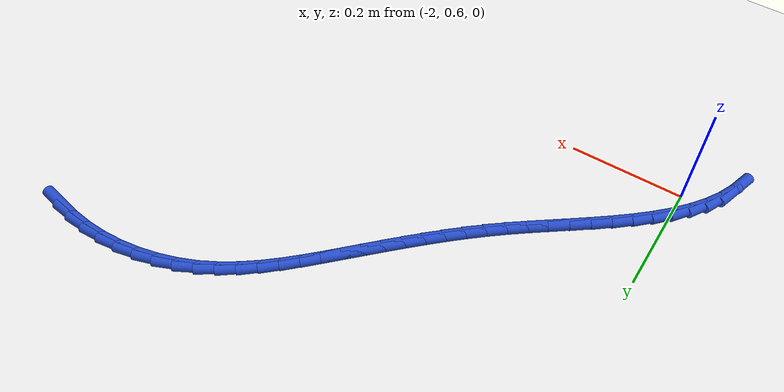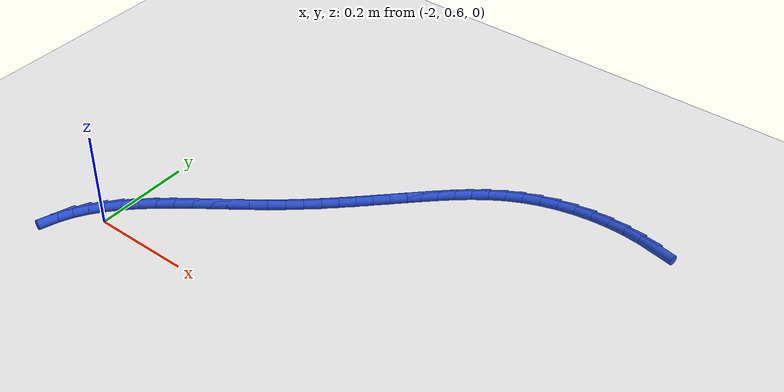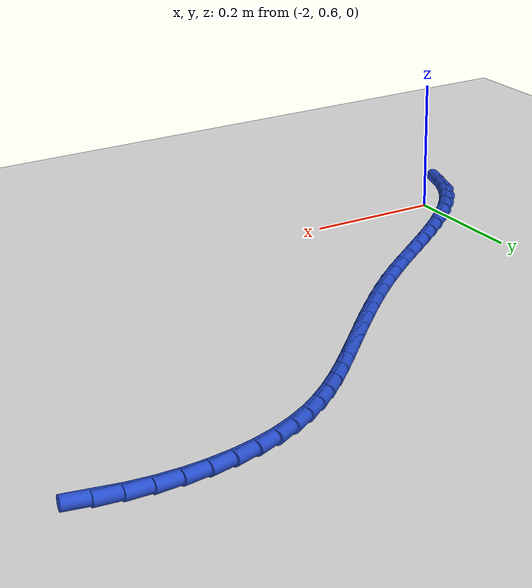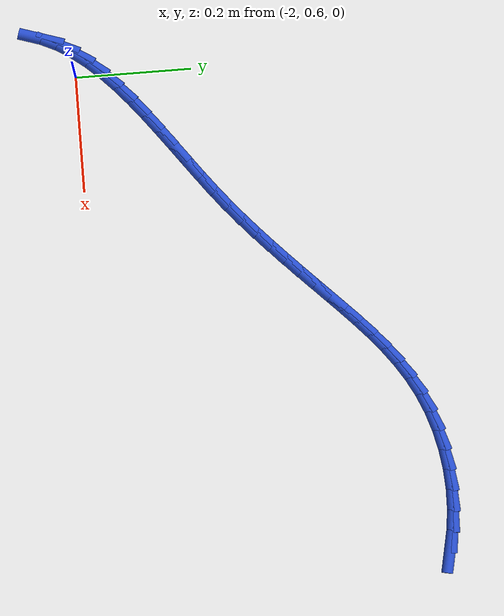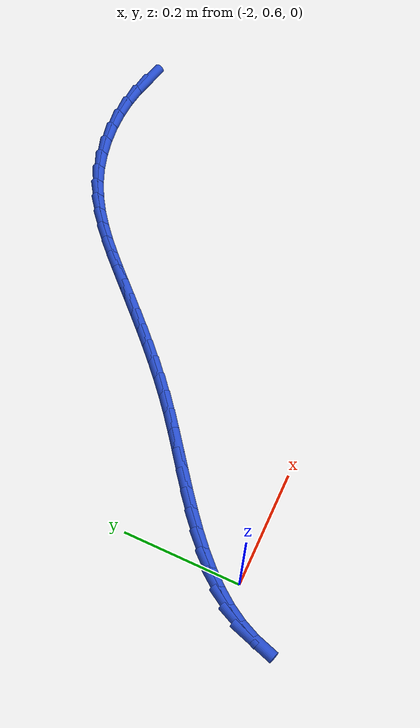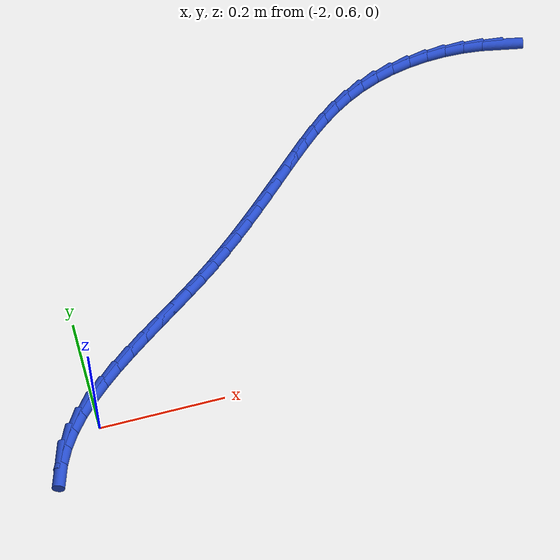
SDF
<sdf version="1.6">
 <world name="default">
  <model name="ground_plane">
   <static>1</static>
   <link name="link">
    <collision name="collision">
     <geometry><plane><normal>0 0 1</normal><size>100 100</size></plane></geometry>
     <surface><friction><ode><mu>100</mu><mu2>50</mu2></ode></friction></surface>
    </collision>
    <visual name="visual">
     <cast_shadows>0</cast_shadows>
     <geometry><plane><normal>0 0 1</normal><size>100 100</size></plane></geometry>
     <material>
      <script><uri>file://media/materials/scripts/gazebo.material</uri><name>Gazebo/WhiteGlow</name></script>
     </material>
    </visual>
   </link>
  </model>
  <model name="line">
   <link name="link_54">
    <pose>-1.13627609460566 1.1795199551467386 0.01 0 1.57 -0.19990667457121697</pose>
    <collision name="collision">
     <geometry><cylinder><radius>0.01</radius><length>0.08</length></cylinder></geometry>
    </collision>
    <visual name="visual">
     <material>
      <script><name>Gazebo/Blue</name><uri>file://media/materials/scripts/gazebo.material</uri></script>
     </material>
     <geometry><cylinder><radius>0.01</radius><length>0.08</length></cylinder></geometry>
    </visual>
   </link>
   <link name="link_55">
    <pose>-1.1702574868179003 1.186405022788991 0.01 0 1.57 -0.10813474050414479</pose>
    <collision name="collision">
     <geometry><cylinder><radius>0.01</radius><length>0.08</length></cylinder></geometry>
    </collision>
    <visual name="visual">
     <material>
      <script><name>Gazebo/Blue</name><uri>file://media/materials/scripts/gazebo.material</uri></script>
     </material>
     <geometry><cylinder><radius>0.01</radius><length>0.08</length></cylinder></geometry>
    </visual>
   </link>
   <link name="link_56">
    <pose>-1.2050116010604341 1.190177866832368 0.01 0 1.57 -0.02062837492942689</pose>
    <collision name="collision">
     <geometry><cylinder><radius>0.01</radius><length>0.08</length></cylinder></geometry>
    </collision>
    <visual name="visual">
     <material>
      <script><name>Gazebo/Blue</name><uri>file://media/materials/scripts/gazebo.material</uri></script>
     </material>
     <geometry><cylinder><radius>0.01</radius><length>0.08</length></cylinder></geometry>
    </visual>
   </link>
   <link name="link_57">
    <pose>-1.2401626916109363 1.1909030795768976 0.01 0 1.57 0.06410531051194077</pose>
    <collision name="collision">
     <geometry><cylinder><radius>0.01</radius><length>0.08</length></cylinder></geometry>
    </collision>
    <visual name="visual">
     <material>
      <script><name>Gazebo/Blue</name><uri>file://media/materials/scripts/gazebo.material</uri></script>
     </material>
     <geometry><cylinder><radius>0.01</radius><length>0.08</length></cylinder></geometry>
    </visual>
   </link>
   <link name="link_58">
    <pose>-1.275335012747081 1.1886452533226077 0.01 0 1.57 0.14758642458134646</pose>
    <collision name="collision">
     <geometry><cylinder><radius>0.01</radius><length>0.08</length></cylinder></geometry>
    </collision>
    <visual name="visual">
     <material>
      <script><name>Gazebo/Blue</name><uri>file://media/materials/scripts/gazebo.material</uri></script>
     </material>
     <geometry><cylinder><radius>0.01</radius><length>0.08</length></cylinder></geometry>
    </visual>
   </link>
   <link name="link_59">
    <pose>-1.310152818746542 1.183468980369527 0.01 0 1.57 0.23135551691995282</pose>
    <collision name="collision">
     <geometry><cylinder><radius>0.01</radius><length>0.08</length></cylinder></geometry>
    </collision>
    <visual name="visual">
     <material>
      <script><name>Gazebo/Blue</name><uri>file://media/materials/scripts/gazebo.material</uri></script>
     </material>
     <geometry><cylinder><radius>0.01</radius><length>0.08</length></cylinder></geometry>
    </visual>
   </link>
   <link name="link_60">
    <pose>-1.3442403638869937 1.1754388530176825 0.01 0 1.57 0.3169824499481687</pose>
    <collision name="collision">
     <geometry><cylinder><radius>0.01</radius><length>0.08</length></cylinder></geometry>
    </collision>
    <visual name="visual">
     <material>
      <script><name>Gazebo/Blue</name><uri>file://media/materials/scripts/gazebo.material</uri></script>
     </material>
     <geometry><cylinder><radius>0.01</radius><length>0.08</length></cylinder></geometry>
    </visual>
   </link>
   <link name="link_61">
    <pose>-1.3772219024461108 1.1646194635671039 0.01 0 1.57 0.40607531566782945</pose>
    <collision name="collision">
     <geometry><cylinder><radius>0.01</radius><length>0.08</length></cylinder></geometry>
    </collision>
    <visual name="visual">
     <material>
      <script><name>Gazebo/Blue</name><uri>file://media/materials/scripts/gazebo.material</uri></script>
     </material>
     <geometry><cylinder><radius>0.01</radius><length>0.08</length></cylinder></geometry>
    </visual>
   </link>
   <link name="link_62">
    <pose>-1.408721688701566 1.1510754043178177 0.01 0 1.57 0.49833022943852795</pose>
    <collision name="collision">
     <geometry><cylinder><radius>0.01</radius><length>0.08</length></cylinder></geometry>
    </collision>
    <visual name="visual">
     <material>
      <script><name>Gazebo/Blue</name><uri>file://media/materials/scripts/gazebo.material</uri></script>
     </material>
     <geometry><cylinder><radius>0.01</radius><length>0.08</length></cylinder></geometry>
    </visual>
   </link>
   <link name="link_63">
    <pose>-1.438431282298904 1.134909334314007 0.01 0 1.57 0.5823239168019104</pose>
    <collision name="collision">
     <geometry><cylinder><radius>0.01</radius><length>0.08</length></cylinder></geometry>
    </collision>
    <visual name="visual">
     <material>
      <script><name>Gazebo/Blue</name><uri>file://media/materials/scripts/gazebo.material</uri></script>
     </material>
     <geometry><cylinder><radius>0.01</radius><length>0.08</length></cylinder></geometry>
    </visual>
   </link>
   <link name="link_64">
    <pose>-1.4664537716423394 1.1164566661002735 0.01 0 1.57 0.6523564934999107</pose>
    <collision name="collision">
     <geometry><cylinder><radius>0.01</radius><length>0.08</length></cylinder></geometry>
    </collision>
    <visual name="visual">
     <material>
      <script><name>Gazebo/Blue</name><uri>file://media/materials/scripts/gazebo.material</uri></script>
     </material>
     <geometry><cylinder><radius>0.01</radius><length>0.08</length></cylinder></geometry>
    </visual>
   </link>
   <link name="link_65">
    <pose>-1.4930477354789766 1.096140754851777 0.01 0 1.57 0.7077951934457127</pose>
    <collision name="collision">
     <geometry><cylinder><radius>0.01</radius><length>0.08</length></cylinder></geometry>
    </collision>
    <visual name="visual">
     <material>
      <script><name>Gazebo/Blue</name><uri>file://media/materials/scripts/gazebo.material</uri></script>
     </material>
     <geometry><cylinder><radius>0.01</radius><length>0.08</length></cylinder></geometry>
    </visual>
   </link>
   <link name="link_66">
    <pose>-1.518472041981991 1.0743851194380254 0.01 0 1.57 0.7485814889560467</pose>
    <collision name="collision">
     <geometry><cylinder><radius>0.01</radius><length>0.08</length></cylinder></geometry>
    </collision>
    <visual name="visual">
     <material>
      <script><name>Gazebo/Blue</name><uri>file://media/materials/scripts/gazebo.material</uri></script>
     </material>
     <geometry><cylinder><radius>0.01</radius><length>0.08</length></cylinder></geometry>
    </visual>
   </link>
   <link name="link_67">
    <pose>-1.5429855593245583 1.0516132787285262 0.01 0 1.57 0.7748732498835863</pose>
    <collision name="collision">
     <geometry><cylinder><radius>0.01</radius><length>0.08</length></cylinder></geometry>
    </collision>
    <visual name="visual">
     <material>
      <script><name>Gazebo/Blue</name><uri>file://media/materials/scripts/gazebo.material</uri></script>
     </material>
     <geometry><cylinder><radius>0.01</radius><length>0.08</length></cylinder></geometry>
    </visual>
   </link>
   <link name="link_68">
    <pose>-1.566847155679854 1.028248751592787 0.01 0 1.57 0.7869054991160199</pose>
    <collision name="collision">
     <geometry><cylinder><radius>0.01</radius><length>0.08</length></cylinder></geometry>
    </collision>
    <visual name="visual">
     <material>
      <script><name>Gazebo/Blue</name><uri>file://media/materials/scripts/gazebo.material</uri></script>
     </material>
     <geometry><cylinder><radius>0.01</radius><length>0.08</length></cylinder></geometry>
    </visual>
   </link>
   <link name="link_69">
    <pose>-1.5903145943456718 1.0047104594562921 0.01 0 1.57 0.7889601581840595</pose>
    <collision name="collision">
     <geometry><cylinder><radius>0.01</radius><length>0.08</length></cylinder></geometry>
    </collision>
    <visual name="visual">
     <material>
      <script><name>Gazebo/Blue</name><uri>file://media/materials/scripts/gazebo.material</uri></script>
     </material>
     <geometry><cylinder><radius>0.01</radius><length>0.08</length></cylinder></geometry>
    </visual>
   </link>
   <link name="link_70">
    <pose>-1.6136060284112455 0.9812525036032852 0.01 0 1.57 0.786383488912937</pose>
    <collision name="collision">
     <geometry><cylinder><radius>0.01</radius><length>0.08</length></cylinder></geometry>
    </collision>
    <visual name="visual">
     <material>
      <script><name>Gazebo/Blue</name><uri>file://media/materials/scripts/gazebo.material</uri></script>
     </material>
     <geometry><cylinder><radius>0.01</radius><length>0.08</length></cylinder></geometry>
    </visual>
   </link>
   <link name="link_71">
    <pose>-1.6368900098113632 0.9579225923304766 0.01 0 1.57 0.77950360853138</pose>
    <collision name="collision">
     <geometry><cylinder><radius>0.01</radius><length>0.08</length></cylinder></geometry>
    </collision>
    <visual name="visual">
     <material>
      <script><name>Gazebo/Blue</name><uri>file://media/materials/scripts/gazebo.material</uri></script>
     </material>
     <geometry><cylinder><radius>0.01</radius><length>0.08</length></cylinder></geometry>
    </visual>
   </link>
   <link name="link_72">
    <pose>-1.660331955672457 0.9347553898337037 0.01 0 1.57 0.7683784043462404</pose>
    <collision name="collision">
     <geometry><cylinder><radius>0.01</radius><length>0.08</length></cylinder></geometry>
    </collision>
    <visual name="visual">
     <material>
      <script><name>Gazebo/Blue</name><uri>file://media/materials/scripts/gazebo.material</uri></script>
     </material>
     <geometry><cylinder><radius>0.01</radius><length>0.08</length></cylinder></geometry>
    </visual>
   </link>
   <link name="link_73">
    <pose>-1.6840972831209589 0.9117855603088035 0.01 0 1.57 0.7531413860307464</pose>
    <collision name="collision">
     <geometry><cylinder><radius>0.01</radius><length>0.08</length></cylinder></geometry>
    </collision>
    <visual name="visual">
     <material>
      <script><name>Gazebo/Blue</name><uri>file://media/materials/scripts/gazebo.material</uri></script>
     </material>
     <geometry><cylinder><radius>0.01</radius><length>0.08</length></cylinder></geometry>
    </visual>
   </link>
   <link name="link_74">
    <pose>-1.7083514092833008 0.8890477679516143 0.01 0 1.57 0.7340023476778366</pose>
    <collision name="collision">
     <geometry><cylinder><radius>0.01</radius><length>0.08</length></cylinder></geometry>
    </collision>
    <visual name="visual">
     <material>
      <script><name>Gazebo/Blue</name><uri>file://media/materials/scripts/gazebo.material</uri></script>
     </material>
     <geometry><cylinder><radius>0.01</radius><length>0.08</length></cylinder></geometry>
    </visual>
   </link>
   <link name="link_75">
    <pose>-1.7332597512859147 0.8665766769579729 0.01 0 1.57 0.7112458480106252</pose>
    <collision name="collision">
     <geometry><cylinder><radius>0.01</radius><length>0.08</length></cylinder></geometry>
    </collision>
    <visual name="visual">
     <material>
      <script><name>Gazebo/Blue</name><uri>file://media/materials/scripts/gazebo.material</uri></script>
     </material>
     <geometry><cylinder><radius>0.01</radius><length>0.08</length></cylinder></geometry>
    </visual>
   </link>
   <link name="link_76">
    <pose>-1.7589877262552323 0.8444069515237166 0.01 0 1.57 0.6852523705501307</pose>
    <collision name="collision">
     <geometry><cylinder><radius>0.01</radius><length>0.08</length></cylinder></geometry>
    </collision>
    <visual name="visual">
     <material>
      <script><name>Gazebo/Blue</name><uri>file://media/materials/scripts/gazebo.material</uri></script>
     </material>
     <geometry><cylinder><radius>0.01</radius><length>0.08</length></cylinder></geometry>
    </visual>
   </link>
   <link name="link_77">
    <pose>-1.7856997364363711 0.8225729395728273 0.01 0 1.57 0.6605381469614446</pose>
    <collision name="collision">
     <geometry><cylinder><radius>0.01</radius><length>0.08</length></cylinder></geometry>
    </collision>
    <visual name="visual">
     <material>
      <script><name>Gazebo/Blue</name><uri>file://media/materials/scripts/gazebo.material</uri></script>
     </material>
     <geometry><cylinder><radius>0.01</radius><length>0.08</length></cylinder></geometry>
    </visual>
   </link>
   <link name="link_78">
    <pose>-1.8133923415653759 0.8010566835419237 0.01 0 1.57 0.6455203686303415</pose>
    <collision name="collision">
     <geometry><cylinder><radius>0.01</radius><length>0.08</length></cylinder></geometry>
    </collision>
    <visual name="visual">
     <material>
      <script><name>Gazebo/Blue</name><uri>file://media/materials/scripts/gazebo.material</uri></script>
     </material>
     <geometry><cylinder><radius>0.01</radius><length>0.08</length></cylinder></geometry>
    </visual>
   </link>
   <link name="link_79">
    <pose>-1.8417085539267526 0.7797300483454884 0.01 0 1.57 0.6407040246989433</pose>
    <collision name="collision">
     <geometry><cylinder><radius>0.01</radius><length>0.08</length></cylinder></geometry>
    </collision>
    <visual name="visual">
     <material>
      <script><name>Gazebo/Blue</name><uri>file://media/materials/scripts/gazebo.material</uri></script>
     </material>
     <geometry><cylinder><radius>0.01</radius><length>0.08</length></cylinder></geometry>
    </visual>
   </link>
   <link name="link_80">
    <pose>-1.870246632952902 0.7584509523730555 0.01 0 1.57 0.6458662366305488</pose>
    <collision name="collision">
     <geometry><cylinder><radius>0.01</radius><length>0.08</length></cylinder></geometry>
    </collision>
    <visual name="visual">
     <material>
      <script><name>Gazebo/Blue</name><uri>file://media/materials/scripts/gazebo.material</uri></script>
     </material>
     <geometry><cylinder><radius>0.01</radius><length>0.08</length></cylinder></geometry>
    </visual>
   </link>
   <link name="link_81">
    <pose>-1.8986048380762228 0.7370773140141579 0.01 0 1.57 0.6611832936335186</pose>
    <collision name="collision">
     <geometry><cylinder><radius>0.01</radius><length>0.08</length></cylinder></geometry>
    </collision>
    <visual name="visual">
     <material>
      <script><name>Gazebo/Blue</name><uri>file://media/materials/scripts/gazebo.material</uri></script>
     </material>
     <geometry><cylinder><radius>0.01</radius><length>0.08</length></cylinder></geometry>
    </visual>
   </link>
   <link name="link_82">
    <pose>-1.9263814287291163 0.7154670516583294 0.01 0 1.57 0.6872307025824317</pose>
    <collision name="collision">
     <geometry><cylinder><radius>0.01</radius><length>0.08</length></cylinder></geometry>
    </collision>
    <visual name="visual">
     <material>
      <script><name>Gazebo/Blue</name><uri>file://media/materials/scripts/gazebo.material</uri></script>
     </material>
     <geometry><cylinder><radius>0.01</radius><length>0.08</length></cylinder></geometry>
    </visual>
   </link>
   <link name="link_83">
    <pose>-1.953174664343982 0.6934780836951038 0.01 0 1.57 0.7249852870610742</pose>
    <collision name="collision">
     <geometry><cylinder><radius>0.01</radius><length>0.08</length></cylinder></geometry>
    </collision>
    <visual name="visual">
     <material>
      <script><name>Gazebo/Blue</name><uri>file://media/materials/scripts/gazebo.material</uri></script>
     </material>
     <geometry><cylinder><radius>0.01</radius><length>0.08</length></cylinder></geometry>
    </visual>
   </link>
   <link name="link_84">
    <pose>-1.9785828043532188 0.6709683285140141 0.01 0 1.57 0.7758100373778083</pose>
    <collision name="collision">
     <geometry><cylinder><radius>0.01</radius><length>0.08</length></cylinder></geometry>
    </collision>
    <visual name="visual">
     <material>
      <script><name>Gazebo/Blue</name><uri>file://media/materials/scripts/gazebo.material</uri></script>
     </material>
     <geometry><cylinder><radius>0.01</radius><length>0.08</length></cylinder></geometry>
    </visual>
   </link>
   <link name="link_85">
    <pose>-2.0022041081892277 0.647795704504594 0.01 0 1.57 0.84138079612605</pose>
    <collision name="collision">
     <geometry><cylinder><radius>0.01</radius><length>0.08</length></cylinder></geometry>
    </collision>
    <visual name="visual">
     <material>
      <script><name>Gazebo/Blue</name><uri>file://media/materials/scripts/gazebo.material</uri></script>
     </material>
     <geometry><cylinder><radius>0.01</radius><length>0.08</length></cylinder></geometry>
    </visual>
   </link>
   <link name="link_86">
    <pose>-2.023636835284408 0.6238181300563774 0.01 0 1.57 0.9234813964851993</pose>
    <collision name="collision">
     <geometry><cylinder><radius>0.01</radius><length>0.08</length></cylinder></geometry>
    </collision>
    <visual name="visual">
     <material>
      <script><name>Gazebo/Blue</name><uri>file://media/materials/scripts/gazebo.material</uri></script>
     </material>
     <geometry><cylinder><radius>0.01</radius><length>0.08</length></cylinder></geometry>
    </visual>
   </link>
   <link name="link_87">
    <pose>-2.042479245071161 0.5988935235588977 0.01 0 1.57 1.0235612501364606</pose>
    <collision name="collision">
     <geometry><cylinder><radius>0.01</radius><length>0.08</length></cylinder></geometry>
    </collision>
    <visual name="visual">
     <material>
      <script><name>Gazebo/Blue</name><uri>file://media/materials/scripts/gazebo.material</uri></script>
     </material>
     <geometry><cylinder><radius>0.01</radius><length>0.08</length></cylinder></geometry>
    </visual>
   </link>
   <link name="link_88">
    <pose>-2.058329596981885 0.572879803401688 0.01 0 1.57 1.141622706556608</pose>
    <collision name="collision">
     <geometry><cylinder><radius>0.01</radius><length>0.08</length></cylinder></geometry>
    </collision>
    <visual name="visual">
     <material>
      <script><name>Gazebo/Blue</name><uri>file://media/materials/scripts/gazebo.material</uri></script>
     </material>
     <geometry><cylinder><radius>0.01</radius><length>0.08</length></cylinder></geometry>
    </visual>
   </link>
   <link name="link_89">
    <pose>-2.0707964439941233 0.5456370820991376 0.01 0 1.57 1.2621249616050907</pose>
    <collision name="collision">
     <geometry><cylinder><radius>0.01</radius><length>0.08</length></cylinder></geometry>
    </collision>
    <visual name="visual">
     <material>
      <script><name>Gazebo/Blue</name><uri>file://media/materials/scripts/gazebo.material</uri></script>
     </material>
     <geometry><cylinder><radius>0.01</radius><length>0.08</length></cylinder></geometry>
    </visual>
   </link>
  </model>
 </world>
</sdf>
